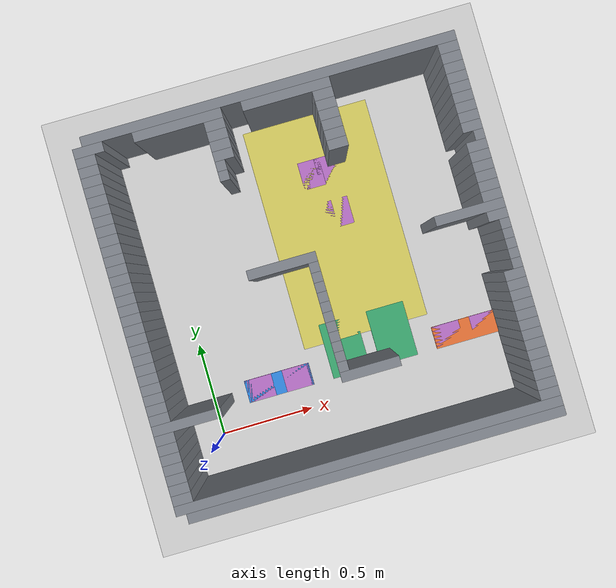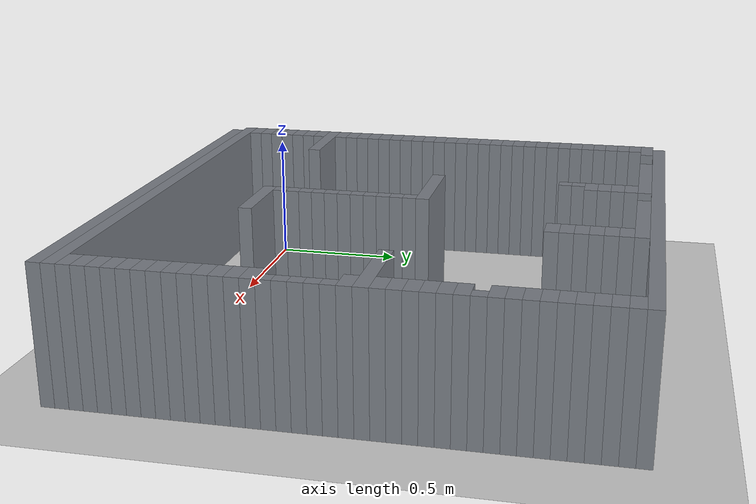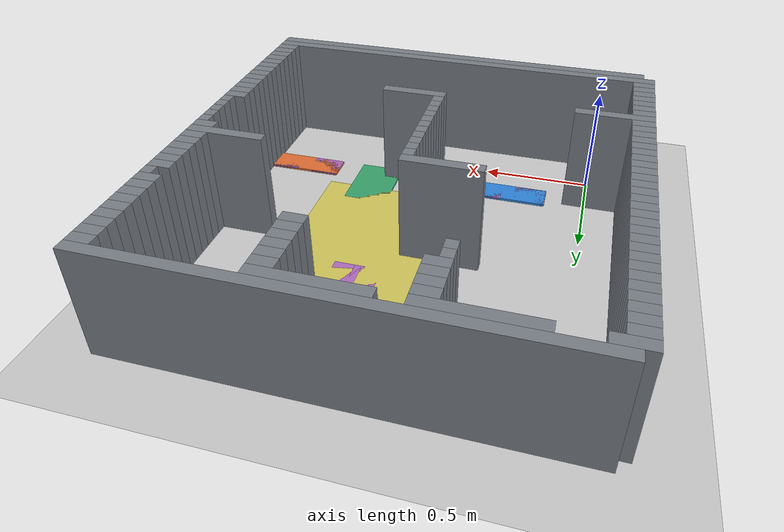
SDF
<?xml version='1.0' encoding='utf-8'?>
<sdf version="1.6">
  <world name="warehouse">
    <include>
      <uri>model://sun</uri>
    </include>
    <include>
      <uri>model://ground_plane</uri>
    </include>
    <physics name="default_physics" type="ode">
      <max_step_size>0.001</max_step_size>
      <real_time_factor>1.0</real_time_factor>
      <real_time_update_rate>1000</real_time_update_rate>
    </physics>
    <model name="warehouse_map_walls">
      <static>true</static>
      <link name="walls">
        <collision name="wall_000_collision">
          <pose>0.751000 1.625000 0.250 0 0 0</pose>
          <geometry>
            <box>
              <size>1.900000 0.050000 0.500</size>
            </box>
          </geometry>
        </collision>
        <visual name="wall_000_visual">
          <pose>0.751000 1.625000 0.250 0 0 0</pose>
          <geometry>
            <box>
              <size>1.900000 0.050000 0.500</size>
            </box>
          </geometry>
          <material>
            <ambient>0.48 0.50 0.53 1</ambient>
            <diffuse>0.48 0.50 0.53 1</diffuse>
          </material>
        </visual>
        <collision name="wall_001_collision">
          <pose>-0.174000 1.575000 0.250 0 0 0</pose>
          <geometry>
            <box>
              <size>0.150000 0.050000 0.500</size>
            </box>
          </geometry>
        </collision>
        <visual name="wall_001_visual">
          <pose>-0.174000 1.575000 0.250 0 0 0</pose>
          <geometry>
            <box>
              <size>0.150000 0.050000 0.500</size>
            </box>
          </geometry>
          <material>
            <ambient>0.48 0.50 0.53 1</ambient>
            <diffuse>0.48 0.50 0.53 1</diffuse>
          </material>
        </visual>
        <collision name="wall_002_collision">
          <pose>0.276000 1.575000 0.250 0 0 0</pose>
          <geometry>
            <box>
              <size>0.450000 0.050000 0.500</size>
            </box>
          </geometry>
        </collision>
        <visual name="wall_002_visual">
          <pose>0.276000 1.575000 0.250 0 0 0</pose>
          <geometry>
            <box>
              <size>0.450000 0.050000 0.500</size>
            </box>
          </geometry>
          <material>
            <ambient>0.48 0.50 0.53 1</ambient>
            <diffuse>0.48 0.50 0.53 1</diffuse>
          </material>
        </visual>
        <collision name="wall_003_collision">
          <pose>0.826000 1.575000 0.250 0 0 0</pose>
          <geometry>
            <box>
              <size>0.450000 0.050000 0.500</size>
            </box>
          </geometry>
        </collision>
        <visual name="wall_003_visual">
          <pose>0.826000 1.575000 0.250 0 0 0</pose>
          <geometry>
            <box>
              <size>0.450000 0.050000 0.500</size>
            </box>
          </geometry>
          <material>
            <ambient>0.48 0.50 0.53 1</ambient>
            <diffuse>0.48 0.50 0.53 1</diffuse>
          </material>
        </visual>
        <collision name="wall_004_collision">
          <pose>1.651000 1.575000 0.250 0 0 0</pose>
          <geometry>
            <box>
              <size>0.100000 0.050000 0.500</size>
            </box>
          </geometry>
        </collision>
        <visual name="wall_004_visual">
          <pose>1.651000 1.575000 0.250 0 0 0</pose>
          <geometry>
            <box>
              <size>0.100000 0.050000 0.500</size>
            </box>
          </geometry>
          <material>
            <ambient>0.48 0.50 0.53 1</ambient>
            <diffuse>0.48 0.50 0.53 1</diffuse>
          </material>
        </visual>
        <collision name="wall_005_collision">
          <pose>-0.199000 1.525000 0.250 0 0 0</pose>
          <geometry>
            <box>
              <size>0.100000 0.050000 0.500</size>
            </box>
          </geometry>
        </collision>
        <visual name="wall_005_visual">
          <pose>-0.199000 1.525000 0.250 0 0 0</pose>
          <geometry>
            <box>
              <size>0.100000 0.050000 0.500</size>
            </box>
          </geometry>
          <material>
            <ambient>0.48 0.50 0.53 1</ambient>
            <diffuse>0.48 0.50 0.53 1</diffuse>
          </material>
        </visual>
        <collision name="wall_006_collision">
          <pose>0.451000 1.525000 0.250 0 0 0</pose>
          <geometry>
            <box>
              <size>0.100000 0.050000 0.500</size>
            </box>
          </geometry>
        </collision>
        <visual name="wall_006_visual">
          <pose>0.451000 1.525000 0.250 0 0 0</pose>
          <geometry>
            <box>
              <size>0.100000 0.050000 0.500</size>
            </box>
          </geometry>
          <material>
            <ambient>0.48 0.50 0.53 1</ambient>
            <diffuse>0.48 0.50 0.53 1</diffuse>
          </material>
        </visual>
        <collision name="wall_007_collision">
          <pose>1.001000 1.525000 0.250 0 0 0</pose>
          <geometry>
            <box>
              <size>0.100000 0.050000 0.500</size>
            </box>
          </geometry>
        </collision>
        <visual name="wall_007_visual">
          <pose>1.001000 1.525000 0.250 0 0 0</pose>
          <geometry>
            <box>
              <size>0.100000 0.050000 0.500</size>
            </box>
          </geometry>
          <material>
            <ambient>0.48 0.50 0.53 1</ambient>
            <diffuse>0.48 0.50 0.53 1</diffuse>
          </material>
        </visual>
        <collision name="wall_008_collision">
          <pose>1.651000 1.525000 0.250 0 0 0</pose>
          <geometry>
            <box>
              <size>0.100000 0.050000 0.500</size>
            </box>
          </geometry>
        </collision>
        <visual name="wall_008_visual">
          <pose>1.651000 1.525000 0.250 0 0 0</pose>
          <geometry>
            <box>
              <size>0.100000 0.050000 0.500</size>
            </box>
          </geometry>
          <material>
            <ambient>0.48 0.50 0.53 1</ambient>
            <diffuse>0.48 0.50 0.53 1</diffuse>
          </material>
        </visual>
        <collision name="wall_009_collision">
          <pose>-0.199000 1.475000 0.250 0 0 0</pose>
          <geometry>
            <box>
              <size>0.100000 0.050000 0.500</size>
            </box>
          </geometry>
        </collision>
        <visual name="wall_009_visual">
          <pose>-0.199000 1.475000 0.250 0 0 0</pose>
          <geometry>
            <box>
              <size>0.100000 0.050000 0.500</size>
            </box>
          </geometry>
          <material>
            <ambient>0.48 0.50 0.53 1</ambient>
            <diffuse>0.48 0.50 0.53 1</diffuse>
          </material>
        </visual>
        <collision name="wall_010_collision">
          <pose>0.451000 1.475000 0.250 0 0 0</pose>
          <geometry>
            <box>
              <size>0.100000 0.050000 0.500</size>
            </box>
          </geometry>
        </collision>
        <visual name="wall_010_visual">
          <pose>0.451000 1.475000 0.250 0 0 0</pose>
          <geometry>
            <box>
              <size>0.100000 0.050000 0.500</size>
            </box>
          </geometry>
          <material>
            <ambient>0.48 0.50 0.53 1</ambient>
            <diffuse>0.48 0.50 0.53 1</diffuse>
          </material>
        </visual>
        <collision name="wall_011_collision">
          <pose>1.001000 1.475000 0.250 0 0 0</pose>
          <geometry>
            <box>
              <size>0.100000 0.050000 0.500</size>
            </box>
          </geometry>
        </collision>
        <visual name="wall_011_visual">
          <pose>1.001000 1.475000 0.250 0 0 0</pose>
          <geometry>
            <box>
              <size>0.100000 0.050000 0.500</size>
            </box>
          </geometry>
          <material>
            <ambient>0.48 0.50 0.53 1</ambient>
            <diffuse>0.48 0.50 0.53 1</diffuse>
          </material>
        </visual>
        <collision name="wall_012_collision">
          <pose>1.651000 1.475000 0.250 0 0 0</pose>
          <geometry>
            <box>
              <size>0.100000 0.050000 0.500</size>
            </box>
          </geometry>
        </collision>
        <visual name="wall_012_visual">
          <pose>1.651000 1.475000 0.250 0 0 0</pose>
          <geometry>
            <box>
              <size>0.100000 0.050000 0.500</size>
            </box>
          </geometry>
          <material>
            <ambient>0.48 0.50 0.53 1</ambient>
            <diffuse>0.48 0.50 0.53 1</diffuse>
          </material>
        </visual>
        <collision name="wall_013_collision">
          <pose>-0.199000 1.425000 0.250 0 0 0</pose>
          <geometry>
            <box>
              <size>0.100000 0.050000 0.500</size>
            </box>
          </geometry>
        </collision>
        <visual name="wall_013_visual">
          <pose>-0.199000 1.425000 0.250 0 0 0</pose>
          <geometry>
            <box>
              <size>0.100000 0.050000 0.500</size>
            </box>
          </geometry>
          <material>
            <ambient>0.48 0.50 0.53 1</ambient>
            <diffuse>0.48 0.50 0.53 1</diffuse>
          </material>
        </visual>
        <collision name="wall_014_collision">
          <pose>0.451000 1.425000 0.250 0 0 0</pose>
          <geometry>
            <box>
              <size>0.100000 0.050000 0.500</size>
            </box>
          </geometry>
        </collision>
        <visual name="wall_014_visual">
          <pose>0.451000 1.425000 0.250 0 0 0</pose>
          <geometry>
            <box>
              <size>0.100000 0.050000 0.500</size>
            </box>
          </geometry>
          <material>
            <ambient>0.48 0.50 0.53 1</ambient>
            <diffuse>0.48 0.50 0.53 1</diffuse>
          </material>
        </visual>
        <collision name="wall_015_collision">
          <pose>1.001000 1.425000 0.250 0 0 0</pose>
          <geometry>
            <box>
              <size>0.100000 0.050000 0.500</size>
            </box>
          </geometry>
        </collision>
        <visual name="wall_015_visual">
          <pose>1.001000 1.425000 0.250 0 0 0</pose>
          <geometry>
            <box>
              <size>0.100000 0.050000 0.500</size>
            </box>
          </geometry>
          <material>
            <ambient>0.48 0.50 0.53 1</ambient>
            <diffuse>0.48 0.50 0.53 1</diffuse>
          </material>
        </visual>
        <collision name="wall_016_collision">
          <pose>1.651000 1.425000 0.250 0 0 0</pose>
          <geometry>
            <box>
              <size>0.100000 0.050000 0.500</size>
            </box>
          </geometry>
        </collision>
        <visual name="wall_016_visual">
          <pose>1.651000 1.425000 0.250 0 0 0</pose>
          <geometry>
            <box>
              <size>0.100000 0.050000 0.500</size>
            </box>
          </geometry>
          <material>
            <ambient>0.48 0.50 0.53 1</ambient>
            <diffuse>0.48 0.50 0.53 1</diffuse>
          </material>
        </visual>
        <collision name="wall_017_collision">
          <pose>-0.199000 1.375000 0.250 0 0 0</pose>
          <geometry>
            <box>
              <size>0.100000 0.050000 0.500</size>
            </box>
          </geometry>
        </collision>
        <visual name="wall_017_visual">
          <pose>-0.199000 1.375000 0.250 0 0 0</pose>
          <geometry>
            <box>
              <size>0.100000 0.050000 0.500</size>
            </box>
          </geometry>
          <material>
            <ambient>0.48 0.50 0.53 1</ambient>
            <diffuse>0.48 0.50 0.53 1</diffuse>
          </material>
        </visual>
        <collision name="wall_018_collision">
          <pose>0.451000 1.375000 0.250 0 0 0</pose>
          <geometry>
            <box>
              <size>0.100000 0.050000 0.500</size>
            </box>
          </geometry>
        </collision>
        <visual name="wall_018_visual">
          <pose>0.451000 1.375000 0.250 0 0 0</pose>
          <geometry>
            <box>
              <size>0.100000 0.050000 0.500</size>
            </box>
          </geometry>
          <material>
            <ambient>0.48 0.50 0.53 1</ambient>
            <diffuse>0.48 0.50 0.53 1</diffuse>
          </material>
        </visual>
        <collision name="wall_019_collision">
          <pose>1.001000 1.375000 0.250 0 0 0</pose>
          <geometry>
            <box>
              <size>0.100000 0.050000 0.500</size>
            </box>
          </geometry>
        </collision>
        <visual name="wall_019_visual">
          <pose>1.001000 1.375000 0.250 0 0 0</pose>
          <geometry>
            <box>
              <size>0.100000 0.050000 0.500</size>
            </box>
          </geometry>
          <material>
            <ambient>0.48 0.50 0.53 1</ambient>
            <diffuse>0.48 0.50 0.53 1</diffuse>
          </material>
        </visual>
        <collision name="wall_020_collision">
          <pose>1.651000 1.375000 0.250 0 0 0</pose>
          <geometry>
            <box>
              <size>0.100000 0.050000 0.500</size>
            </box>
          </geometry>
        </collision>
        <visual name="wall_020_visual">
          <pose>1.651000 1.375000 0.250 0 0 0</pose>
          <geometry>
            <box>
              <size>0.100000 0.050000 0.500</size>
            </box>
          </geometry>
          <material>
            <ambient>0.48 0.50 0.53 1</ambient>
            <diffuse>0.48 0.50 0.53 1</diffuse>
          </material>
        </visual>
        <collision name="wall_021_collision">
          <pose>-0.199000 1.325000 0.250 0 0 0</pose>
          <geometry>
            <box>
              <size>0.100000 0.050000 0.500</size>
            </box>
          </geometry>
        </collision>
        <visual name="wall_021_visual">
          <pose>-0.199000 1.325000 0.250 0 0 0</pose>
          <geometry>
            <box>
              <size>0.100000 0.050000 0.500</size>
            </box>
          </geometry>
          <material>
            <ambient>0.48 0.50 0.53 1</ambient>
            <diffuse>0.48 0.50 0.53 1</diffuse>
          </material>
        </visual>
        <collision name="wall_022_collision">
          <pose>0.426000 1.325000 0.250 0 0 0</pose>
          <geometry>
            <box>
              <size>0.050000 0.050000 0.500</size>
            </box>
          </geometry>
        </collision>
        <visual name="wall_022_visual">
          <pose>0.426000 1.325000 0.250 0 0 0</pose>
          <geometry>
            <box>
              <size>0.050000 0.050000 0.500</size>
            </box>
          </geometry>
          <material>
            <ambient>0.48 0.50 0.53 1</ambient>
            <diffuse>0.48 0.50 0.53 1</diffuse>
          </material>
        </visual>
        <collision name="wall_023_collision">
          <pose>1.001000 1.325000 0.250 0 0 0</pose>
          <geometry>
            <box>
              <size>0.100000 0.050000 0.500</size>
            </box>
          </geometry>
        </collision>
        <visual name="wall_023_visual">
          <pose>1.001000 1.325000 0.250 0 0 0</pose>
          <geometry>
            <box>
              <size>0.100000 0.050000 0.500</size>
            </box>
          </geometry>
          <material>
            <ambient>0.48 0.50 0.53 1</ambient>
            <diffuse>0.48 0.50 0.53 1</diffuse>
          </material>
        </visual>
        <collision name="wall_024_collision">
          <pose>1.651000 1.325000 0.250 0 0 0</pose>
          <geometry>
            <box>
              <size>0.100000 0.050000 0.500</size>
            </box>
          </geometry>
        </collision>
        <visual name="wall_024_visual">
          <pose>1.651000 1.325000 0.250 0 0 0</pose>
          <geometry>
            <box>
              <size>0.100000 0.050000 0.500</size>
            </box>
          </geometry>
          <material>
            <ambient>0.48 0.50 0.53 1</ambient>
            <diffuse>0.48 0.50 0.53 1</diffuse>
          </material>
        </visual>
        <collision name="wall_025_collision">
          <pose>-0.199000 1.275000 0.250 0 0 0</pose>
          <geometry>
            <box>
              <size>0.100000 0.050000 0.500</size>
            </box>
          </geometry>
        </collision>
        <visual name="wall_025_visual">
          <pose>-0.199000 1.275000 0.250 0 0 0</pose>
          <geometry>
            <box>
              <size>0.100000 0.050000 0.500</size>
            </box>
          </geometry>
          <material>
            <ambient>0.48 0.50 0.53 1</ambient>
            <diffuse>0.48 0.50 0.53 1</diffuse>
          </material>
        </visual>
        <collision name="wall_026_collision">
          <pose>0.426000 1.275000 0.250 0 0 0</pose>
          <geometry>
            <box>
              <size>0.050000 0.050000 0.500</size>
            </box>
          </geometry>
        </collision>
        <visual name="wall_026_visual">
          <pose>0.426000 1.275000 0.250 0 0 0</pose>
          <geometry>
            <box>
              <size>0.050000 0.050000 0.500</size>
            </box>
          </geometry>
          <material>
            <ambient>0.48 0.50 0.53 1</ambient>
            <diffuse>0.48 0.50 0.53 1</diffuse>
          </material>
        </visual>
        <collision name="wall_027_collision">
          <pose>1.001000 1.275000 0.250 0 0 0</pose>
          <geometry>
            <box>
              <size>0.100000 0.050000 0.500</size>
            </box>
          </geometry>
        </collision>
        <visual name="wall_027_visual">
          <pose>1.001000 1.275000 0.250 0 0 0</pose>
          <geometry>
            <box>
              <size>0.100000 0.050000 0.500</size>
            </box>
          </geometry>
          <material>
            <ambient>0.48 0.50 0.53 1</ambient>
            <diffuse>0.48 0.50 0.53 1</diffuse>
          </material>
        </visual>
        <collision name="wall_028_collision">
          <pose>1.651000 1.275000 0.250 0 0 0</pose>
          <geometry>
            <box>
              <size>0.100000 0.050000 0.500</size>
            </box>
          </geometry>
        </collision>
        <visual name="wall_028_visual">
          <pose>1.651000 1.275000 0.250 0 0 0</pose>
          <geometry>
            <box>
              <size>0.100000 0.050000 0.500</size>
            </box>
          </geometry>
          <material>
            <ambient>0.48 0.50 0.53 1</ambient>
            <diffuse>0.48 0.50 0.53 1</diffuse>
          </material>
        </visual>
        <collision name="wall_029_collision">
          <pose>-0.199000 1.225000 0.250 0 0 0</pose>
          <geometry>
            <box>
              <size>0.100000 0.050000 0.500</size>
            </box>
          </geometry>
        </collision>
        <visual name="wall_029_visual">
          <pose>-0.199000 1.225000 0.250 0 0 0</pose>
          <geometry>
            <box>
              <size>0.100000 0.050000 0.500</size>
            </box>
          </geometry>
          <material>
            <ambient>0.48 0.50 0.53 1</ambient>
            <diffuse>0.48 0.50 0.53 1</diffuse>
          </material>
        </visual>
        <collision name="wall_030_collision">
          <pose>1.651000 1.225000 0.250 0 0 0</pose>
          <geometry>
            <box>
              <size>0.100000 0.050000 0.500</size>
            </box>
          </geometry>
        </collision>
        <visual name="wall_030_visual">
          <pose>1.651000 1.225000 0.250 0 0 0</pose>
          <geometry>
            <box>
              <size>0.100000 0.050000 0.500</size>
            </box>
          </geometry>
          <material>
            <ambient>0.48 0.50 0.53 1</ambient>
            <diffuse>0.48 0.50 0.53 1</diffuse>
          </material>
        </visual>
        <collision name="wall_031_collision">
          <pose>-0.199000 1.175000 0.250 0 0 0</pose>
          <geometry>
            <box>
              <size>0.100000 0.050000 0.500</size>
            </box>
          </geometry>
        </collision>
        <visual name="wall_031_visual">
          <pose>-0.199000 1.175000 0.250 0 0 0</pose>
          <geometry>
            <box>
              <size>0.100000 0.050000 0.500</size>
            </box>
          </geometry>
          <material>
            <ambient>0.48 0.50 0.53 1</ambient>
            <diffuse>0.48 0.50 0.53 1</diffuse>
          </material>
        </visual>
        <collision name="wall_032_collision">
          <pose>1.651000 1.175000 0.250 0 0 0</pose>
          <geometry>
            <box>
              <size>0.100000 0.050000 0.500</size>
            </box>
          </geometry>
        </collision>
        <visual name="wall_032_visual">
          <pose>1.651000 1.175000 0.250 0 0 0</pose>
          <geometry>
            <box>
              <size>0.100000 0.050000 0.500</size>
            </box>
          </geometry>
          <material>
            <ambient>0.48 0.50 0.53 1</ambient>
            <diffuse>0.48 0.50 0.53 1</diffuse>
          </material>
        </visual>
        <collision name="wall_033_collision">
          <pose>-0.199000 1.125000 0.250 0 0 0</pose>
          <geometry>
            <box>
              <size>0.100000 0.050000 0.500</size>
            </box>
          </geometry>
        </collision>
        <visual name="wall_033_visual">
          <pose>-0.199000 1.125000 0.250 0 0 0</pose>
          <geometry>
            <box>
              <size>0.100000 0.050000 0.500</size>
            </box>
          </geometry>
          <material>
            <ambient>0.48 0.50 0.53 1</ambient>
            <diffuse>0.48 0.50 0.53 1</diffuse>
          </material>
        </visual>
        <collision name="wall_034_collision">
          <pose>1.676000 1.125000 0.250 0 0 0</pose>
          <geometry>
            <box>
              <size>0.050000 0.050000 0.500</size>
            </box>
          </geometry>
        </collision>
        <visual name="wall_034_visual">
          <pose>1.676000 1.125000 0.250 0 0 0</pose>
          <geometry>
            <box>
              <size>0.050000 0.050000 0.500</size>
            </box>
          </geometry>
          <material>
            <ambient>0.48 0.50 0.53 1</ambient>
            <diffuse>0.48 0.50 0.53 1</diffuse>
          </material>
        </visual>
        <collision name="wall_035_collision">
          <pose>-0.199000 1.075000 0.250 0 0 0</pose>
          <geometry>
            <box>
              <size>0.100000 0.050000 0.500</size>
            </box>
          </geometry>
        </collision>
        <visual name="wall_035_visual">
          <pose>-0.199000 1.075000 0.250 0 0 0</pose>
          <geometry>
            <box>
              <size>0.100000 0.050000 0.500</size>
            </box>
          </geometry>
          <material>
            <ambient>0.48 0.50 0.53 1</ambient>
            <diffuse>0.48 0.50 0.53 1</diffuse>
          </material>
        </visual>
        <collision name="wall_036_collision">
          <pose>1.651000 1.075000 0.250 0 0 0</pose>
          <geometry>
            <box>
              <size>0.100000 0.050000 0.500</size>
            </box>
          </geometry>
        </collision>
        <visual name="wall_036_visual">
          <pose>1.651000 1.075000 0.250 0 0 0</pose>
          <geometry>
            <box>
              <size>0.100000 0.050000 0.500</size>
            </box>
          </geometry>
          <material>
            <ambient>0.48 0.50 0.53 1</ambient>
            <diffuse>0.48 0.50 0.53 1</diffuse>
          </material>
        </visual>
        <collision name="wall_037_collision">
          <pose>-0.199000 1.025000 0.250 0 0 0</pose>
          <geometry>
            <box>
              <size>0.100000 0.050000 0.500</size>
            </box>
          </geometry>
        </collision>
        <visual name="wall_037_visual">
          <pose>-0.199000 1.025000 0.250 0 0 0</pose>
          <geometry>
            <box>
              <size>0.100000 0.050000 0.500</size>
            </box>
          </geometry>
          <material>
            <ambient>0.48 0.50 0.53 1</ambient>
            <diffuse>0.48 0.50 0.53 1</diffuse>
          </material>
        </visual>
        <collision name="wall_038_collision">
          <pose>1.651000 1.025000 0.250 0 0 0</pose>
          <geometry>
            <box>
              <size>0.100000 0.050000 0.500</size>
            </box>
          </geometry>
        </collision>
        <visual name="wall_038_visual">
          <pose>1.651000 1.025000 0.250 0 0 0</pose>
          <geometry>
            <box>
              <size>0.100000 0.050000 0.500</size>
            </box>
          </geometry>
          <material>
            <ambient>0.48 0.50 0.53 1</ambient>
            <diffuse>0.48 0.50 0.53 1</diffuse>
          </material>
        </visual>
        <collision name="wall_039_collision">
          <pose>-0.199000 0.975000 0.250 0 0 0</pose>
          <geometry>
            <box>
              <size>0.100000 0.050000 0.500</size>
            </box>
          </geometry>
        </collision>
        <visual name="wall_039_visual">
          <pose>-0.199000 0.975000 0.250 0 0 0</pose>
          <geometry>
            <box>
              <size>0.100000 0.050000 0.500</size>
            </box>
          </geometry>
          <material>
            <ambient>0.48 0.50 0.53 1</ambient>
            <diffuse>0.48 0.50 0.53 1</diffuse>
          </material>
        </visual>
        <collision name="wall_040_collision">
          <pose>1.651000 0.975000 0.250 0 0 0</pose>
          <geometry>
            <box>
              <size>0.100000 0.050000 0.500</size>
            </box>
          </geometry>
        </collision>
        <visual name="wall_040_visual">
          <pose>1.651000 0.975000 0.250 0 0 0</pose>
          <geometry>
            <box>
              <size>0.100000 0.050000 0.500</size>
            </box>
          </geometry>
          <material>
            <ambient>0.48 0.50 0.53 1</ambient>
            <diffuse>0.48 0.50 0.53 1</diffuse>
          </material>
        </visual>
        <collision name="wall_041_collision">
          <pose>-0.199000 0.925000 0.250 0 0 0</pose>
          <geometry>
            <box>
              <size>0.100000 0.050000 0.500</size>
            </box>
          </geometry>
        </collision>
        <visual name="wall_041_visual">
          <pose>-0.199000 0.925000 0.250 0 0 0</pose>
          <geometry>
            <box>
              <size>0.100000 0.050000 0.500</size>
            </box>
          </geometry>
          <material>
            <ambient>0.48 0.50 0.53 1</ambient>
            <diffuse>0.48 0.50 0.53 1</diffuse>
          </material>
        </visual>
        <collision name="wall_042_collision">
          <pose>1.651000 0.925000 0.250 0 0 0</pose>
          <geometry>
            <box>
              <size>0.100000 0.050000 0.500</size>
            </box>
          </geometry>
        </collision>
        <visual name="wall_042_visual">
          <pose>1.651000 0.925000 0.250 0 0 0</pose>
          <geometry>
            <box>
              <size>0.100000 0.050000 0.500</size>
            </box>
          </geometry>
          <material>
            <ambient>0.48 0.50 0.53 1</ambient>
            <diffuse>0.48 0.50 0.53 1</diffuse>
          </material>
        </visual>
        <collision name="wall_043_collision">
          <pose>-0.199000 0.875000 0.250 0 0 0</pose>
          <geometry>
            <box>
              <size>0.100000 0.050000 0.500</size>
            </box>
          </geometry>
        </collision>
        <visual name="wall_043_visual">
          <pose>-0.199000 0.875000 0.250 0 0 0</pose>
          <geometry>
            <box>
              <size>0.100000 0.050000 0.500</size>
            </box>
          </geometry>
          <material>
            <ambient>0.48 0.50 0.53 1</ambient>
            <diffuse>0.48 0.50 0.53 1</diffuse>
          </material>
        </visual>
        <collision name="wall_044_collision">
          <pose>1.651000 0.875000 0.250 0 0 0</pose>
          <geometry>
            <box>
              <size>0.100000 0.050000 0.500</size>
            </box>
          </geometry>
        </collision>
        <visual name="wall_044_visual">
          <pose>1.651000 0.875000 0.250 0 0 0</pose>
          <geometry>
            <box>
              <size>0.100000 0.050000 0.500</size>
            </box>
          </geometry>
          <material>
            <ambient>0.48 0.50 0.53 1</ambient>
            <diffuse>0.48 0.50 0.53 1</diffuse>
          </material>
        </visual>
        <collision name="wall_045_collision">
          <pose>-0.199000 0.825000 0.250 0 0 0</pose>
          <geometry>
            <box>
              <size>0.100000 0.050000 0.500</size>
            </box>
          </geometry>
        </collision>
        <visual name="wall_045_visual">
          <pose>-0.199000 0.825000 0.250 0 0 0</pose>
          <geometry>
            <box>
              <size>0.100000 0.050000 0.500</size>
            </box>
          </geometry>
          <material>
            <ambient>0.48 0.50 0.53 1</ambient>
            <diffuse>0.48 0.50 0.53 1</diffuse>
          </material>
        </visual>
        <collision name="wall_046_collision">
          <pose>1.651000 0.825000 0.250 0 0 0</pose>
          <geometry>
            <box>
              <size>0.100000 0.050000 0.500</size>
            </box>
          </geometry>
        </collision>
        <visual name="wall_046_visual">
          <pose>1.651000 0.825000 0.250 0 0 0</pose>
          <geometry>
            <box>
              <size>0.100000 0.050000 0.500</size>
            </box>
          </geometry>
          <material>
            <ambient>0.48 0.50 0.53 1</ambient>
            <diffuse>0.48 0.50 0.53 1</diffuse>
          </material>
        </visual>
        <collision name="wall_047_collision">
          <pose>-0.199000 0.775000 0.250 0 0 0</pose>
          <geometry>
            <box>
              <size>0.100000 0.050000 0.500</size>
            </box>
          </geometry>
        </collision>
        <visual name="wall_047_visual">
          <pose>-0.199000 0.775000 0.250 0 0 0</pose>
          <geometry>
            <box>
              <size>0.100000 0.050000 0.500</size>
            </box>
          </geometry>
          <material>
            <ambient>0.48 0.50 0.53 1</ambient>
            <diffuse>0.48 0.50 0.53 1</diffuse>
          </material>
        </visual>
        <collision name="wall_048_collision">
          <pose>0.576000 0.775000 0.250 0 0 0</pose>
          <geometry>
            <box>
              <size>0.350000 0.050000 0.500</size>
            </box>
          </geometry>
        </collision>
        <visual name="wall_048_visual">
          <pose>0.576000 0.775000 0.250 0 0 0</pose>
          <geometry>
            <box>
              <size>0.350000 0.050000 0.500</size>
            </box>
          </geometry>
          <material>
            <ambient>0.48 0.50 0.53 1</ambient>
            <diffuse>0.48 0.50 0.53 1</diffuse>
          </material>
        </visual>
        <collision name="wall_049_collision">
          <pose>1.526000 0.775000 0.250 0 0 0</pose>
          <geometry>
            <box>
              <size>0.350000 0.050000 0.500</size>
            </box>
          </geometry>
        </collision>
        <visual name="wall_049_visual">
          <pose>1.526000 0.775000 0.250 0 0 0</pose>
          <geometry>
            <box>
              <size>0.350000 0.050000 0.500</size>
            </box>
          </geometry>
          <material>
            <ambient>0.48 0.50 0.53 1</ambient>
            <diffuse>0.48 0.50 0.53 1</diffuse>
          </material>
        </visual>
        <collision name="wall_050_collision">
          <pose>-0.199000 0.725000 0.250 0 0 0</pose>
          <geometry>
            <box>
              <size>0.100000 0.050000 0.500</size>
            </box>
          </geometry>
        </collision>
        <visual name="wall_050_visual">
          <pose>-0.199000 0.725000 0.250 0 0 0</pose>
          <geometry>
            <box>
              <size>0.100000 0.050000 0.500</size>
            </box>
          </geometry>
          <material>
            <ambient>0.48 0.50 0.53 1</ambient>
            <diffuse>0.48 0.50 0.53 1</diffuse>
          </material>
        </visual>
        <collision name="wall_051_collision">
          <pose>0.726000 0.725000 0.250 0 0 0</pose>
          <geometry>
            <box>
              <size>0.050000 0.050000 0.500</size>
            </box>
          </geometry>
        </collision>
        <visual name="wall_051_visual">
          <pose>0.726000 0.725000 0.250 0 0 0</pose>
          <geometry>
            <box>
              <size>0.050000 0.050000 0.500</size>
            </box>
          </geometry>
          <material>
            <ambient>0.48 0.50 0.53 1</ambient>
            <diffuse>0.48 0.50 0.53 1</diffuse>
          </material>
        </visual>
        <collision name="wall_052_collision">
          <pose>1.651000 0.725000 0.250 0 0 0</pose>
          <geometry>
            <box>
              <size>0.100000 0.050000 0.500</size>
            </box>
          </geometry>
        </collision>
        <visual name="wall_052_visual">
          <pose>1.651000 0.725000 0.250 0 0 0</pose>
          <geometry>
            <box>
              <size>0.100000 0.050000 0.500</size>
            </box>
          </geometry>
          <material>
            <ambient>0.48 0.50 0.53 1</ambient>
            <diffuse>0.48 0.50 0.53 1</diffuse>
          </material>
        </visual>
        <collision name="wall_053_collision">
          <pose>-0.199000 0.675000 0.250 0 0 0</pose>
          <geometry>
            <box>
              <size>0.100000 0.050000 0.500</size>
            </box>
          </geometry>
        </collision>
        <visual name="wall_053_visual">
          <pose>-0.199000 0.675000 0.250 0 0 0</pose>
          <geometry>
            <box>
              <size>0.100000 0.050000 0.500</size>
            </box>
          </geometry>
          <material>
            <ambient>0.48 0.50 0.53 1</ambient>
            <diffuse>0.48 0.50 0.53 1</diffuse>
          </material>
        </visual>
        <collision name="wall_054_collision">
          <pose>0.726000 0.675000 0.250 0 0 0</pose>
          <geometry>
            <box>
              <size>0.050000 0.050000 0.500</size>
            </box>
          </geometry>
        </collision>
        <visual name="wall_054_visual">
          <pose>0.726000 0.675000 0.250 0 0 0</pose>
          <geometry>
            <box>
              <size>0.050000 0.050000 0.500</size>
            </box>
          </geometry>
          <material>
            <ambient>0.48 0.50 0.53 1</ambient>
            <diffuse>0.48 0.50 0.53 1</diffuse>
          </material>
        </visual>
        <collision name="wall_055_collision">
          <pose>1.676000 0.675000 0.250 0 0 0</pose>
          <geometry>
            <box>
              <size>0.050000 0.050000 0.500</size>
            </box>
          </geometry>
        </collision>
        <visual name="wall_055_visual">
          <pose>1.676000 0.675000 0.250 0 0 0</pose>
          <geometry>
            <box>
              <size>0.050000 0.050000 0.500</size>
            </box>
          </geometry>
          <material>
            <ambient>0.48 0.50 0.53 1</ambient>
            <diffuse>0.48 0.50 0.53 1</diffuse>
          </material>
        </visual>
        <collision name="wall_056_collision">
          <pose>-0.199000 0.625000 0.250 0 0 0</pose>
          <geometry>
            <box>
              <size>0.100000 0.050000 0.500</size>
            </box>
          </geometry>
        </collision>
        <visual name="wall_056_visual">
          <pose>-0.199000 0.625000 0.250 0 0 0</pose>
          <geometry>
            <box>
              <size>0.100000 0.050000 0.500</size>
            </box>
          </geometry>
          <material>
            <ambient>0.48 0.50 0.53 1</ambient>
            <diffuse>0.48 0.50 0.53 1</diffuse>
          </material>
        </visual>
        <collision name="wall_057_collision">
          <pose>0.726000 0.625000 0.250 0 0 0</pose>
          <geometry>
            <box>
              <size>0.050000 0.050000 0.500</size>
            </box>
          </geometry>
        </collision>
        <visual name="wall_057_visual">
          <pose>0.726000 0.625000 0.250 0 0 0</pose>
          <geometry>
            <box>
              <size>0.050000 0.050000 0.500</size>
            </box>
          </geometry>
          <material>
            <ambient>0.48 0.50 0.53 1</ambient>
            <diffuse>0.48 0.50 0.53 1</diffuse>
          </material>
        </visual>
        <collision name="wall_058_collision">
          <pose>1.676000 0.625000 0.250 0 0 0</pose>
          <geometry>
            <box>
              <size>0.050000 0.050000 0.500</size>
            </box>
          </geometry>
        </collision>
        <visual name="wall_058_visual">
          <pose>1.676000 0.625000 0.250 0 0 0</pose>
          <geometry>
            <box>
              <size>0.050000 0.050000 0.500</size>
            </box>
          </geometry>
          <material>
            <ambient>0.48 0.50 0.53 1</ambient>
            <diffuse>0.48 0.50 0.53 1</diffuse>
          </material>
        </visual>
        <collision name="wall_059_collision">
          <pose>-0.199000 0.575000 0.250 0 0 0</pose>
          <geometry>
            <box>
              <size>0.100000 0.050000 0.500</size>
            </box>
          </geometry>
        </collision>
        <visual name="wall_059_visual">
          <pose>-0.199000 0.575000 0.250 0 0 0</pose>
          <geometry>
            <box>
              <size>0.100000 0.050000 0.500</size>
            </box>
          </geometry>
          <material>
            <ambient>0.48 0.50 0.53 1</ambient>
            <diffuse>0.48 0.50 0.53 1</diffuse>
          </material>
        </visual>
        <collision name="wall_060_collision">
          <pose>0.726000 0.575000 0.250 0 0 0</pose>
          <geometry>
            <box>
              <size>0.050000 0.050000 0.500</size>
            </box>
          </geometry>
        </collision>
        <visual name="wall_060_visual">
          <pose>0.726000 0.575000 0.250 0 0 0</pose>
          <geometry>
            <box>
              <size>0.050000 0.050000 0.500</size>
            </box>
          </geometry>
          <material>
            <ambient>0.48 0.50 0.53 1</ambient>
            <diffuse>0.48 0.50 0.53 1</diffuse>
          </material>
        </visual>
        <collision name="wall_061_collision">
          <pose>1.676000 0.575000 0.250 0 0 0</pose>
          <geometry>
            <box>
              <size>0.050000 0.050000 0.500</size>
            </box>
          </geometry>
        </collision>
        <visual name="wall_061_visual">
          <pose>1.676000 0.575000 0.250 0 0 0</pose>
          <geometry>
            <box>
              <size>0.050000 0.050000 0.500</size>
            </box>
          </geometry>
          <material>
            <ambient>0.48 0.50 0.53 1</ambient>
            <diffuse>0.48 0.50 0.53 1</diffuse>
          </material>
        </visual>
        <collision name="wall_062_collision">
          <pose>-0.199000 0.525000 0.250 0 0 0</pose>
          <geometry>
            <box>
              <size>0.100000 0.050000 0.500</size>
            </box>
          </geometry>
        </collision>
        <visual name="wall_062_visual">
          <pose>-0.199000 0.525000 0.250 0 0 0</pose>
          <geometry>
            <box>
              <size>0.100000 0.050000 0.500</size>
            </box>
          </geometry>
          <material>
            <ambient>0.48 0.50 0.53 1</ambient>
            <diffuse>0.48 0.50 0.53 1</diffuse>
          </material>
        </visual>
        <collision name="wall_063_collision">
          <pose>0.726000 0.525000 0.250 0 0 0</pose>
          <geometry>
            <box>
              <size>0.050000 0.050000 0.500</size>
            </box>
          </geometry>
        </collision>
        <visual name="wall_063_visual">
          <pose>0.726000 0.525000 0.250 0 0 0</pose>
          <geometry>
            <box>
              <size>0.050000 0.050000 0.500</size>
            </box>
          </geometry>
          <material>
            <ambient>0.48 0.50 0.53 1</ambient>
            <diffuse>0.48 0.50 0.53 1</diffuse>
          </material>
        </visual>
        <collision name="wall_064_collision">
          <pose>1.676000 0.525000 0.250 0 0 0</pose>
          <geometry>
            <box>
              <size>0.050000 0.050000 0.500</size>
            </box>
          </geometry>
        </collision>
        <visual name="wall_064_visual">
          <pose>1.676000 0.525000 0.250 0 0 0</pose>
          <geometry>
            <box>
              <size>0.050000 0.050000 0.500</size>
            </box>
          </geometry>
          <material>
            <ambient>0.48 0.50 0.53 1</ambient>
            <diffuse>0.48 0.50 0.53 1</diffuse>
          </material>
        </visual>
        <collision name="wall_065_collision">
          <pose>-0.199000 0.475000 0.250 0 0 0</pose>
          <geometry>
            <box>
              <size>0.100000 0.050000 0.500</size>
            </box>
          </geometry>
        </collision>
        <visual name="wall_065_visual">
          <pose>-0.199000 0.475000 0.250 0 0 0</pose>
          <geometry>
            <box>
              <size>0.100000 0.050000 0.500</size>
            </box>
          </geometry>
          <material>
            <ambient>0.48 0.50 0.53 1</ambient>
            <diffuse>0.48 0.50 0.53 1</diffuse>
          </material>
        </visual>
        <collision name="wall_066_collision">
          <pose>0.726000 0.475000 0.250 0 0 0</pose>
          <geometry>
            <box>
              <size>0.050000 0.050000 0.500</size>
            </box>
          </geometry>
        </collision>
        <visual name="wall_066_visual">
          <pose>0.726000 0.475000 0.250 0 0 0</pose>
          <geometry>
            <box>
              <size>0.050000 0.050000 0.500</size>
            </box>
          </geometry>
          <material>
            <ambient>0.48 0.50 0.53 1</ambient>
            <diffuse>0.48 0.50 0.53 1</diffuse>
          </material>
        </visual>
        <collision name="wall_067_collision">
          <pose>1.676000 0.475000 0.250 0 0 0</pose>
          <geometry>
            <box>
              <size>0.050000 0.050000 0.500</size>
            </box>
          </geometry>
        </collision>
        <visual name="wall_067_visual">
          <pose>1.676000 0.475000 0.250 0 0 0</pose>
          <geometry>
            <box>
              <size>0.050000 0.050000 0.500</size>
            </box>
          </geometry>
          <material>
            <ambient>0.48 0.50 0.53 1</ambient>
            <diffuse>0.48 0.50 0.53 1</diffuse>
          </material>
        </visual>
        <collision name="wall_068_collision">
          <pose>-0.199000 0.425000 0.250 0 0 0</pose>
          <geometry>
            <box>
              <size>0.100000 0.050000 0.500</size>
            </box>
          </geometry>
        </collision>
        <visual name="wall_068_visual">
          <pose>-0.199000 0.425000 0.250 0 0 0</pose>
          <geometry>
            <box>
              <size>0.100000 0.050000 0.500</size>
            </box>
          </geometry>
          <material>
            <ambient>0.48 0.50 0.53 1</ambient>
            <diffuse>0.48 0.50 0.53 1</diffuse>
          </material>
        </visual>
        <collision name="wall_069_collision">
          <pose>0.726000 0.425000 0.250 0 0 0</pose>
          <geometry>
            <box>
              <size>0.050000 0.050000 0.500</size>
            </box>
          </geometry>
        </collision>
        <visual name="wall_069_visual">
          <pose>0.726000 0.425000 0.250 0 0 0</pose>
          <geometry>
            <box>
              <size>0.050000 0.050000 0.500</size>
            </box>
          </geometry>
          <material>
            <ambient>0.48 0.50 0.53 1</ambient>
            <diffuse>0.48 0.50 0.53 1</diffuse>
          </material>
        </visual>
        <collision name="wall_070_collision">
          <pose>1.651000 0.425000 0.250 0 0 0</pose>
          <geometry>
            <box>
              <size>0.100000 0.050000 0.500</size>
            </box>
          </geometry>
        </collision>
        <visual name="wall_070_visual">
          <pose>1.651000 0.425000 0.250 0 0 0</pose>
          <geometry>
            <box>
              <size>0.100000 0.050000 0.500</size>
            </box>
          </geometry>
          <material>
            <ambient>0.48 0.50 0.53 1</ambient>
            <diffuse>0.48 0.50 0.53 1</diffuse>
          </material>
        </visual>
        <collision name="wall_071_collision">
          <pose>-0.199000 0.375000 0.250 0 0 0</pose>
          <geometry>
            <box>
              <size>0.100000 0.050000 0.500</size>
            </box>
          </geometry>
        </collision>
        <visual name="wall_071_visual">
          <pose>-0.199000 0.375000 0.250 0 0 0</pose>
          <geometry>
            <box>
              <size>0.100000 0.050000 0.500</size>
            </box>
          </geometry>
          <material>
            <ambient>0.48 0.50 0.53 1</ambient>
            <diffuse>0.48 0.50 0.53 1</diffuse>
          </material>
        </visual>
        <collision name="wall_072_collision">
          <pose>0.726000 0.375000 0.250 0 0 0</pose>
          <geometry>
            <box>
              <size>0.050000 0.050000 0.500</size>
            </box>
          </geometry>
        </collision>
        <visual name="wall_072_visual">
          <pose>0.726000 0.375000 0.250 0 0 0</pose>
          <geometry>
            <box>
              <size>0.050000 0.050000 0.500</size>
            </box>
          </geometry>
          <material>
            <ambient>0.48 0.50 0.53 1</ambient>
            <diffuse>0.48 0.50 0.53 1</diffuse>
          </material>
        </visual>
        <collision name="wall_073_collision">
          <pose>1.651000 0.375000 0.250 0 0 0</pose>
          <geometry>
            <box>
              <size>0.100000 0.050000 0.500</size>
            </box>
          </geometry>
        </collision>
        <visual name="wall_073_visual">
          <pose>1.651000 0.375000 0.250 0 0 0</pose>
          <geometry>
            <box>
              <size>0.100000 0.050000 0.500</size>
            </box>
          </geometry>
          <material>
            <ambient>0.48 0.50 0.53 1</ambient>
            <diffuse>0.48 0.50 0.53 1</diffuse>
          </material>
        </visual>
        <collision name="wall_074_collision">
          <pose>-0.199000 0.325000 0.250 0 0 0</pose>
          <geometry>
            <box>
              <size>0.100000 0.050000 0.500</size>
            </box>
          </geometry>
        </collision>
        <visual name="wall_074_visual">
          <pose>-0.199000 0.325000 0.250 0 0 0</pose>
          <geometry>
            <box>
              <size>0.100000 0.050000 0.500</size>
            </box>
          </geometry>
          <material>
            <ambient>0.48 0.50 0.53 1</ambient>
            <diffuse>0.48 0.50 0.53 1</diffuse>
          </material>
        </visual>
        <collision name="wall_075_collision">
          <pose>0.726000 0.325000 0.250 0 0 0</pose>
          <geometry>
            <box>
              <size>0.050000 0.050000 0.500</size>
            </box>
          </geometry>
        </collision>
        <visual name="wall_075_visual">
          <pose>0.726000 0.325000 0.250 0 0 0</pose>
          <geometry>
            <box>
              <size>0.050000 0.050000 0.500</size>
            </box>
          </geometry>
          <material>
            <ambient>0.48 0.50 0.53 1</ambient>
            <diffuse>0.48 0.50 0.53 1</diffuse>
          </material>
        </visual>
        <collision name="wall_076_collision">
          <pose>1.651000 0.325000 0.250 0 0 0</pose>
          <geometry>
            <box>
              <size>0.100000 0.050000 0.500</size>
            </box>
          </geometry>
        </collision>
        <visual name="wall_076_visual">
          <pose>1.651000 0.325000 0.250 0 0 0</pose>
          <geometry>
            <box>
              <size>0.100000 0.050000 0.500</size>
            </box>
          </geometry>
          <material>
            <ambient>0.48 0.50 0.53 1</ambient>
            <diffuse>0.48 0.50 0.53 1</diffuse>
          </material>
        </visual>
        <collision name="wall_077_collision">
          <pose>-0.199000 0.275000 0.250 0 0 0</pose>
          <geometry>
            <box>
              <size>0.100000 0.050000 0.500</size>
            </box>
          </geometry>
        </collision>
        <visual name="wall_077_visual">
          <pose>-0.199000 0.275000 0.250 0 0 0</pose>
          <geometry>
            <box>
              <size>0.100000 0.050000 0.500</size>
            </box>
          </geometry>
          <material>
            <ambient>0.48 0.50 0.53 1</ambient>
            <diffuse>0.48 0.50 0.53 1</diffuse>
          </material>
        </visual>
        <collision name="wall_078_collision">
          <pose>0.726000 0.275000 0.250 0 0 0</pose>
          <geometry>
            <box>
              <size>0.050000 0.050000 0.500</size>
            </box>
          </geometry>
        </collision>
        <visual name="wall_078_visual">
          <pose>0.726000 0.275000 0.250 0 0 0</pose>
          <geometry>
            <box>
              <size>0.050000 0.050000 0.500</size>
            </box>
          </geometry>
          <material>
            <ambient>0.48 0.50 0.53 1</ambient>
            <diffuse>0.48 0.50 0.53 1</diffuse>
          </material>
        </visual>
        <collision name="wall_079_collision">
          <pose>1.651000 0.275000 0.250 0 0 0</pose>
          <geometry>
            <box>
              <size>0.100000 0.050000 0.500</size>
            </box>
          </geometry>
        </collision>
        <visual name="wall_079_visual">
          <pose>1.651000 0.275000 0.250 0 0 0</pose>
          <geometry>
            <box>
              <size>0.100000 0.050000 0.500</size>
            </box>
          </geometry>
          <material>
            <ambient>0.48 0.50 0.53 1</ambient>
            <diffuse>0.48 0.50 0.53 1</diffuse>
          </material>
        </visual>
        <collision name="wall_080_collision">
          <pose>-0.199000 0.225000 0.250 0 0 0</pose>
          <geometry>
            <box>
              <size>0.100000 0.050000 0.500</size>
            </box>
          </geometry>
        </collision>
        <visual name="wall_080_visual">
          <pose>-0.199000 0.225000 0.250 0 0 0</pose>
          <geometry>
            <box>
              <size>0.100000 0.050000 0.500</size>
            </box>
          </geometry>
          <material>
            <ambient>0.48 0.50 0.53 1</ambient>
            <diffuse>0.48 0.50 0.53 1</diffuse>
          </material>
        </visual>
        <collision name="wall_081_collision">
          <pose>0.726000 0.225000 0.250 0 0 0</pose>
          <geometry>
            <box>
              <size>0.050000 0.050000 0.500</size>
            </box>
          </geometry>
        </collision>
        <visual name="wall_081_visual">
          <pose>0.726000 0.225000 0.250 0 0 0</pose>
          <geometry>
            <box>
              <size>0.050000 0.050000 0.500</size>
            </box>
          </geometry>
          <material>
            <ambient>0.48 0.50 0.53 1</ambient>
            <diffuse>0.48 0.50 0.53 1</diffuse>
          </material>
        </visual>
        <collision name="wall_082_collision">
          <pose>1.651000 0.225000 0.250 0 0 0</pose>
          <geometry>
            <box>
              <size>0.100000 0.050000 0.500</size>
            </box>
          </geometry>
        </collision>
        <visual name="wall_082_visual">
          <pose>1.651000 0.225000 0.250 0 0 0</pose>
          <geometry>
            <box>
              <size>0.100000 0.050000 0.500</size>
            </box>
          </geometry>
          <material>
            <ambient>0.48 0.50 0.53 1</ambient>
            <diffuse>0.48 0.50 0.53 1</diffuse>
          </material>
        </visual>
        <collision name="wall_083_collision">
          <pose>-0.074000 0.175000 0.250 0 0 0</pose>
          <geometry>
            <box>
              <size>0.350000 0.050000 0.500</size>
            </box>
          </geometry>
        </collision>
        <visual name="wall_083_visual">
          <pose>-0.074000 0.175000 0.250 0 0 0</pose>
          <geometry>
            <box>
              <size>0.350000 0.050000 0.500</size>
            </box>
          </geometry>
          <material>
            <ambient>0.48 0.50 0.53 1</ambient>
            <diffuse>0.48 0.50 0.53 1</diffuse>
          </material>
        </visual>
        <collision name="wall_084_collision">
          <pose>0.851000 0.175000 0.250 0 0 0</pose>
          <geometry>
            <box>
              <size>0.300000 0.050000 0.500</size>
            </box>
          </geometry>
        </collision>
        <visual name="wall_084_visual">
          <pose>0.851000 0.175000 0.250 0 0 0</pose>
          <geometry>
            <box>
              <size>0.300000 0.050000 0.500</size>
            </box>
          </geometry>
          <material>
            <ambient>0.48 0.50 0.53 1</ambient>
            <diffuse>0.48 0.50 0.53 1</diffuse>
          </material>
        </visual>
        <collision name="wall_085_collision">
          <pose>1.651000 0.175000 0.250 0 0 0</pose>
          <geometry>
            <box>
              <size>0.100000 0.050000 0.500</size>
            </box>
          </geometry>
        </collision>
        <visual name="wall_085_visual">
          <pose>1.651000 0.175000 0.250 0 0 0</pose>
          <geometry>
            <box>
              <size>0.100000 0.050000 0.500</size>
            </box>
          </geometry>
          <material>
            <ambient>0.48 0.50 0.53 1</ambient>
            <diffuse>0.48 0.50 0.53 1</diffuse>
          </material>
        </visual>
        <collision name="wall_086_collision">
          <pose>-0.199000 0.125000 0.250 0 0 0</pose>
          <geometry>
            <box>
              <size>0.100000 0.050000 0.500</size>
            </box>
          </geometry>
        </collision>
        <visual name="wall_086_visual">
          <pose>-0.199000 0.125000 0.250 0 0 0</pose>
          <geometry>
            <box>
              <size>0.100000 0.050000 0.500</size>
            </box>
          </geometry>
          <material>
            <ambient>0.48 0.50 0.53 1</ambient>
            <diffuse>0.48 0.50 0.53 1</diffuse>
          </material>
        </visual>
        <collision name="wall_087_collision">
          <pose>1.651000 0.125000 0.250 0 0 0</pose>
          <geometry>
            <box>
              <size>0.100000 0.050000 0.500</size>
            </box>
          </geometry>
        </collision>
        <visual name="wall_087_visual">
          <pose>1.651000 0.125000 0.250 0 0 0</pose>
          <geometry>
            <box>
              <size>0.100000 0.050000 0.500</size>
            </box>
          </geometry>
          <material>
            <ambient>0.48 0.50 0.53 1</ambient>
            <diffuse>0.48 0.50 0.53 1</diffuse>
          </material>
        </visual>
        <collision name="wall_088_collision">
          <pose>-0.199000 0.075000 0.250 0 0 0</pose>
          <geometry>
            <box>
              <size>0.100000 0.050000 0.500</size>
            </box>
          </geometry>
        </collision>
        <visual name="wall_088_visual">
          <pose>-0.199000 0.075000 0.250 0 0 0</pose>
          <geometry>
            <box>
              <size>0.100000 0.050000 0.500</size>
            </box>
          </geometry>
          <material>
            <ambient>0.48 0.50 0.53 1</ambient>
            <diffuse>0.48 0.50 0.53 1</diffuse>
          </material>
        </visual>
        <collision name="wall_089_collision">
          <pose>1.651000 0.075000 0.250 0 0 0</pose>
          <geometry>
            <box>
              <size>0.100000 0.050000 0.500</size>
            </box>
          </geometry>
        </collision>
        <visual name="wall_089_visual">
          <pose>1.651000 0.075000 0.250 0 0 0</pose>
          <geometry>
            <box>
              <size>0.100000 0.050000 0.500</size>
            </box>
          </geometry>
          <material>
            <ambient>0.48 0.50 0.53 1</ambient>
            <diffuse>0.48 0.50 0.53 1</diffuse>
          </material>
        </visual>
        <collision name="wall_090_collision">
          <pose>-0.199000 0.025000 0.250 0 0 0</pose>
          <geometry>
            <box>
              <size>0.100000 0.050000 0.500</size>
            </box>
          </geometry>
        </collision>
        <visual name="wall_090_visual">
          <pose>-0.199000 0.025000 0.250 0 0 0</pose>
          <geometry>
            <box>
              <size>0.100000 0.050000 0.500</size>
            </box>
          </geometry>
          <material>
            <ambient>0.48 0.50 0.53 1</ambient>
            <diffuse>0.48 0.50 0.53 1</diffuse>
          </material>
        </visual>
        <collision name="wall_091_collision">
          <pose>1.651000 0.025000 0.250 0 0 0</pose>
          <geometry>
            <box>
              <size>0.100000 0.050000 0.500</size>
            </box>
          </geometry>
        </collision>
        <visual name="wall_091_visual">
          <pose>1.651000 0.025000 0.250 0 0 0</pose>
          <geometry>
            <box>
              <size>0.100000 0.050000 0.500</size>
            </box>
          </geometry>
          <material>
            <ambient>0.48 0.50 0.53 1</ambient>
            <diffuse>0.48 0.50 0.53 1</diffuse>
          </material>
        </visual>
        <collision name="wall_092_collision">
          <pose>-0.199000 -0.025000 0.250 0 0 0</pose>
          <geometry>
            <box>
              <size>0.100000 0.050000 0.500</size>
            </box>
          </geometry>
        </collision>
        <visual name="wall_092_visual">
          <pose>-0.199000 -0.025000 0.250 0 0 0</pose>
          <geometry>
            <box>
              <size>0.100000 0.050000 0.500</size>
            </box>
          </geometry>
          <material>
            <ambient>0.48 0.50 0.53 1</ambient>
            <diffuse>0.48 0.50 0.53 1</diffuse>
          </material>
        </visual>
        <collision name="wall_093_collision">
          <pose>1.651000 -0.025000 0.250 0 0 0</pose>
          <geometry>
            <box>
              <size>0.100000 0.050000 0.500</size>
            </box>
          </geometry>
        </collision>
        <visual name="wall_093_visual">
          <pose>1.651000 -0.025000 0.250 0 0 0</pose>
          <geometry>
            <box>
              <size>0.100000 0.050000 0.500</size>
            </box>
          </geometry>
          <material>
            <ambient>0.48 0.50 0.53 1</ambient>
            <diffuse>0.48 0.50 0.53 1</diffuse>
          </material>
        </visual>
        <collision name="wall_094_collision">
          <pose>-0.199000 -0.075000 0.250 0 0 0</pose>
          <geometry>
            <box>
              <size>0.100000 0.050000 0.500</size>
            </box>
          </geometry>
        </collision>
        <visual name="wall_094_visual">
          <pose>-0.199000 -0.075000 0.250 0 0 0</pose>
          <geometry>
            <box>
              <size>0.100000 0.050000 0.500</size>
            </box>
          </geometry>
          <material>
            <ambient>0.48 0.50 0.53 1</ambient>
            <diffuse>0.48 0.50 0.53 1</diffuse>
          </material>
        </visual>
        <collision name="wall_095_collision">
          <pose>1.651000 -0.075000 0.250 0 0 0</pose>
          <geometry>
            <box>
              <size>0.100000 0.050000 0.500</size>
            </box>
          </geometry>
        </collision>
        <visual name="wall_095_visual">
          <pose>1.651000 -0.075000 0.250 0 0 0</pose>
          <geometry>
            <box>
              <size>0.100000 0.050000 0.500</size>
            </box>
          </geometry>
          <material>
            <ambient>0.48 0.50 0.53 1</ambient>
            <diffuse>0.48 0.50 0.53 1</diffuse>
          </material>
        </visual>
        <collision name="wall_096_collision">
          <pose>-0.199000 -0.125000 0.250 0 0 0</pose>
          <geometry>
            <box>
              <size>0.100000 0.050000 0.500</size>
            </box>
          </geometry>
        </collision>
        <visual name="wall_096_visual">
          <pose>-0.199000 -0.125000 0.250 0 0 0</pose>
          <geometry>
            <box>
              <size>0.100000 0.050000 0.500</size>
            </box>
          </geometry>
          <material>
            <ambient>0.48 0.50 0.53 1</ambient>
            <diffuse>0.48 0.50 0.53 1</diffuse>
          </material>
        </visual>
        <collision name="wall_097_collision">
          <pose>1.651000 -0.125000 0.250 0 0 0</pose>
          <geometry>
            <box>
              <size>0.100000 0.050000 0.500</size>
            </box>
          </geometry>
        </collision>
        <visual name="wall_097_visual">
          <pose>1.651000 -0.125000 0.250 0 0 0</pose>
          <geometry>
            <box>
              <size>0.100000 0.050000 0.500</size>
            </box>
          </geometry>
          <material>
            <ambient>0.48 0.50 0.53 1</ambient>
            <diffuse>0.48 0.50 0.53 1</diffuse>
          </material>
        </visual>
        <collision name="wall_098_collision">
          <pose>-0.199000 -0.175000 0.250 0 0 0</pose>
          <geometry>
            <box>
              <size>0.100000 0.050000 0.500</size>
            </box>
          </geometry>
        </collision>
        <visual name="wall_098_visual">
          <pose>-0.199000 -0.175000 0.250 0 0 0</pose>
          <geometry>
            <box>
              <size>0.100000 0.050000 0.500</size>
            </box>
          </geometry>
          <material>
            <ambient>0.48 0.50 0.53 1</ambient>
            <diffuse>0.48 0.50 0.53 1</diffuse>
          </material>
        </visual>
        <collision name="wall_099_collision">
          <pose>1.651000 -0.175000 0.250 0 0 0</pose>
          <geometry>
            <box>
              <size>0.100000 0.050000 0.500</size>
            </box>
          </geometry>
        </collision>
        <visual name="wall_099_visual">
          <pose>1.651000 -0.175000 0.250 0 0 0</pose>
          <geometry>
            <box>
              <size>0.100000 0.050000 0.500</size>
            </box>
          </geometry>
          <material>
            <ambient>0.48 0.50 0.53 1</ambient>
            <diffuse>0.48 0.50 0.53 1</diffuse>
          </material>
        </visual>
        <collision name="wall_100_collision">
          <pose>0.726000 -0.225000 0.250 0 0 0</pose>
          <geometry>
            <box>
              <size>1.950000 0.050000 0.500</size>
            </box>
          </geometry>
        </collision>
        <visual name="wall_100_visual">
          <pose>0.726000 -0.225000 0.250 0 0 0</pose>
          <geometry>
            <box>
              <size>1.950000 0.050000 0.500</size>
            </box>
          </geometry>
          <material>
            <ambient>0.48 0.50 0.53 1</ambient>
            <diffuse>0.48 0.50 0.53 1</diffuse>
          </material>
        </visual>
        <collision name="wall_101_collision">
          <pose>0.751000 -0.275000 0.250 0 0 0</pose>
          <geometry>
            <box>
              <size>1.900000 0.050000 0.500</size>
            </box>
          </geometry>
        </collision>
        <visual name="wall_101_visual">
          <pose>0.751000 -0.275000 0.250 0 0 0</pose>
          <geometry>
            <box>
              <size>1.900000 0.050000 0.500</size>
            </box>
          </geometry>
          <material>
            <ambient>0.48 0.50 0.53 1</ambient>
            <diffuse>0.48 0.50 0.53 1</diffuse>
          </material>
        </visual>
      </link>
    </model>
    <include>
      <uri>model://warehouse_zone_markers</uri>
    </include>
  </world>
</sdf>
